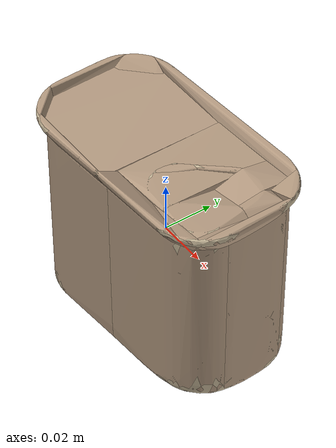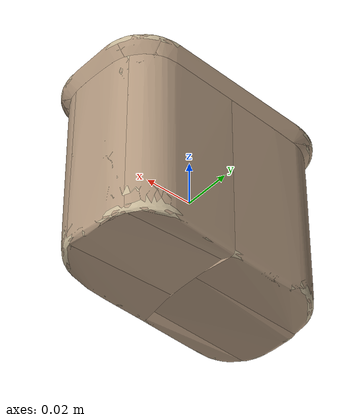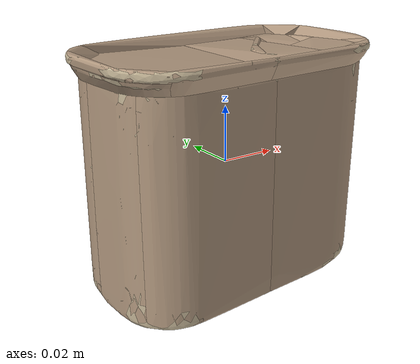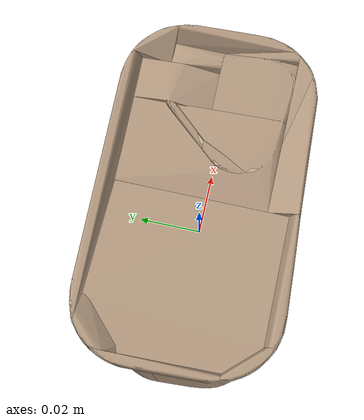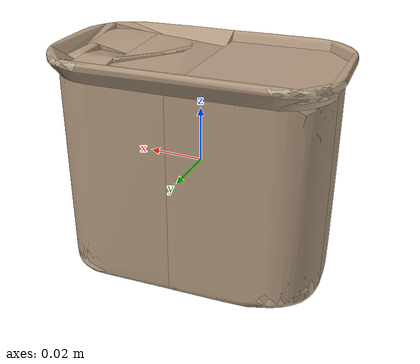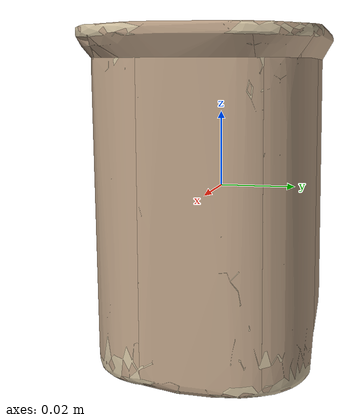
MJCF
<mujoco model="meat"><asset><mesh name="meat_part0" file="../ycb_mjcf/meat/part_00.stl" /><mesh name="meat_part1" file="../ycb_mjcf/meat/part_01.stl" /><mesh name="meat_part2" file="../ycb_mjcf/meat/part_02.stl" /><mesh name="meat_part3" file="../ycb_mjcf/meat/part_03.stl" /><mesh name="meat_part4" file="../ycb_mjcf/meat/part_04.stl" /><mesh name="meat_part5" file="../ycb_mjcf/meat/part_05.stl" /><mesh name="meat_part6" file="../ycb_mjcf/meat/part_06.stl" /><mesh name="meat_part7" file="../ycb_mjcf/meat/part_07.stl" /><mesh name="meat_part8" file="../ycb_mjcf/meat/part_08.stl" /><mesh name="meat_part9" file="../ycb_mjcf/meat/part_09.stl" /><mesh name="meat_part10" file="../ycb_mjcf/meat/part_10.stl" /><mesh name="meat_part11" file="../ycb_mjcf/meat/part_11.stl" /><mesh name="meat_part12" file="../ycb_mjcf/meat/part_12.stl" /><mesh name="meat_part13" file="../ycb_mjcf/meat/part_13.stl" /><mesh name="meat_part14" file="../ycb_mjcf/meat/part_14.stl" /><mesh name="meat_part15" file="../ycb_mjcf/meat/part_15.stl" /><mesh name="meat_part16" file="../ycb_mjcf/meat/part_16.stl" /><mesh name="meat_part17" file="../ycb_mjcf/meat/part_17.stl" /><mesh name="meat_part18" file="../ycb_mjcf/meat/part_18.stl" /><mesh name="meat_part19" file="../ycb_mjcf/meat/part_19.stl" /><mesh name="meat_part20" file="../ycb_mjcf/meat/part_20.stl" /><mesh name="meat_part21" file="../ycb_mjcf/meat/part_21.stl" /><mesh name="meat_part22" file="../ycb_mjcf/meat/part_22.stl" /><mesh name="meat_visual" file="../ycb_mjcf/meat/visual.stl" /></asset><worldbody><body><body name="object"><geom type="mesh" mesh="meat_part0" group="0" condim="4" solimp="0.9 0.95 0.001" solref="0.02 1" friction="0.95 0.3 0.1" rgba="0.7 0.6 0.5 1" /><geom type="mesh" mesh="meat_part1" group="0" condim="4" solimp="0.9 0.95 0.001" solref="0.02 1" friction="0.95 0.3 0.1" rgba="0.7 0.6 0.5 1" /><geom type="mesh" mesh="meat_part2" group="0" condim="4" solimp="0.9 0.95 0.001" solref="0.02 1" friction="0.95 0.3 0.1" rgba="0.7 0.6 0.5 1" /><geom type="mesh" mesh="meat_part3" group="0" condim="4" solimp="0.9 0.95 0.001" solref="0.02 1" friction="0.95 0.3 0.1" rgba="0.7 0.6 0.5 1" /><geom type="mesh" mesh="meat_part4" group="0" condim="4" solimp="0.9 0.95 0.001" solref="0.02 1" friction="0.95 0.3 0.1" rgba="0.7 0.6 0.5 1" /><geom type="mesh" mesh="meat_part5" group="0" condim="4" solimp="0.9 0.95 0.001" solref="0.02 1" friction="0.95 0.3 0.1" rgba="0.7 0.6 0.5 1" /><geom type="mesh" mesh="meat_part6" group="0" condim="4" solimp="0.9 0.95 0.001" solref="0.02 1" friction="0.95 0.3 0.1" rgba="0.7 0.6 0.5 1" /><geom type="mesh" mesh="meat_part7" group="0" condim="4" solimp="0.9 0.95 0.001" solref="0.02 1" friction="0.95 0.3 0.1" rgba="0.7 0.6 0.5 1" /><geom type="mesh" mesh="meat_part8" group="0" condim="4" solimp="0.9 0.95 0.001" solref="0.02 1" friction="0.95 0.3 0.1" rgba="0.7 0.6 0.5 1" /><geom type="mesh" mesh="meat_part9" group="0" condim="4" solimp="0.9 0.95 0.001" solref="0.02 1" friction="0.95 0.3 0.1" rgba="0.7 0.6 0.5 1" /><geom type="mesh" mesh="meat_part10" group="0" condim="4" solimp="0.9 0.95 0.001" solref="0.02 1" friction="0.95 0.3 0.1" rgba="0.7 0.6 0.5 1" /><geom type="mesh" mesh="meat_part11" group="0" condim="4" solimp="0.9 0.95 0.001" solref="0.02 1" friction="0.95 0.3 0.1" rgba="0.7 0.6 0.5 1" /><geom type="mesh" mesh="meat_part12" group="0" condim="4" solimp="0.9 0.95 0.001" solref="0.02 1" friction="0.95 0.3 0.1" rgba="0.7 0.6 0.5 1" /><geom type="mesh" mesh="meat_part13" group="0" condim="4" solimp="0.9 0.95 0.001" solref="0.02 1" friction="0.95 0.3 0.1" rgba="0.7 0.6 0.5 1" /><geom type="mesh" mesh="meat_part14" group="0" condim="4" solimp="0.9 0.95 0.001" solref="0.02 1" friction="0.95 0.3 0.1" rgba="0.7 0.6 0.5 1" /><geom type="mesh" mesh="meat_part15" group="0" condim="4" solimp="0.9 0.95 0.001" solref="0.02 1" friction="0.95 0.3 0.1" rgba="0.7 0.6 0.5 1" /><geom type="mesh" mesh="meat_part16" group="0" condim="4" solimp="0.9 0.95 0.001" solref="0.02 1" friction="0.95 0.3 0.1" rgba="0.7 0.6 0.5 1" /><geom type="mesh" mesh="meat_part17" group="0" condim="4" solimp="0.9 0.95 0.001" solref="0.02 1" friction="0.95 0.3 0.1" rgba="0.7 0.6 0.5 1" /><geom type="mesh" mesh="meat_part18" group="0" condim="4" solimp="0.9 0.95 0.001" solref="0.02 1" friction="0.95 0.3 0.1" rgba="0.7 0.6 0.5 1" /><geom type="mesh" mesh="meat_part19" group="0" condim="4" solimp="0.9 0.95 0.001" solref="0.02 1" friction="0.95 0.3 0.1" rgba="0.7 0.6 0.5 1" /><geom type="mesh" mesh="meat_part20" group="0" condim="4" solimp="0.9 0.95 0.001" solref="0.02 1" friction="0.95 0.3 0.1" rgba="0.7 0.6 0.5 1" /><geom type="mesh" mesh="meat_part21" group="0" condim="4" solimp="0.9 0.95 0.001" solref="0.02 1" friction="0.95 0.3 0.1" rgba="0.7 0.6 0.5 1" /><geom type="mesh" mesh="meat_part22" group="0" condim="4" solimp="0.9 0.95 0.001" solref="0.02 1" friction="0.95 0.3 0.1" rgba="0.7 0.6 0.5 1" /><geom type="mesh" mesh="meat_visual" group="1" contype="0" conaffinity="0" mass="0" rgba="0.78 0.72 0.6 1" /></body><site name="bottom_site" rgba="0 0 0 0" size="0.005" pos="0.000000 0.000000 -0.041772" /><site name="top_site" rgba="0 0 0 0" size="0.005" pos="0.000000 0.000000 0.041772" /><site name="horizontal_radius_site" rgba="0 0 0 0" size="0.005" pos="0.059232 0.059232 0.000000" /></body></worldbody></mujoco>
